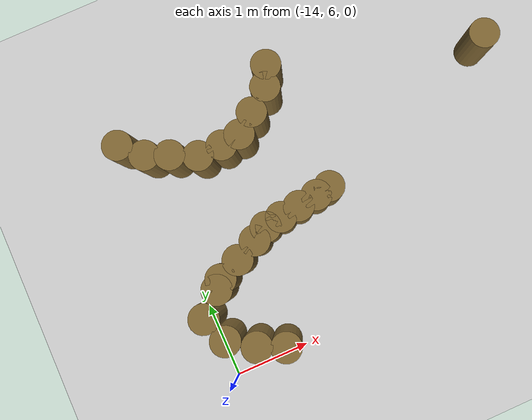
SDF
<sdf version="1.7">
 <world name="default">
  <model name="ground_plane">
   <static>1</static>
   <link name="link">
    <collision name="collision">
     <geometry><plane><normal>0 0 1</normal><size>100 100</size></plane></geometry>
     <surface><friction><ode><mu>100</mu><mu2>50</mu2></ode></friction></surface>
    </collision>
    <visual name="visual">
     <cast_shadows>0</cast_shadows>
     <geometry><plane><normal>0 0 1</normal><size>100 100</size></plane></geometry>
     <material>
      <script><uri>file://media/materials/scripts/gazebo.material</uri><name>Gazebo/Grey</name></script>
     </material>
    </visual>
   </link>
  </model>
  <model name="mini_cylinder_0_clone_0_clone_clone_clone_clone_3_clone_20_clone_54">
   <link name="link">
    <inertial>
     <mass>1</mass>
     <inertia><ixx>0.145833</ixx><ixy>0</ixy><ixz>0</ixz><iyy>0.145833</iyy><iyz>0</iyz><izz>0.125</izz></inertia>
    </inertial>
    <visual name="visual">
     <geometry><cylinder><radius>0.2</radius><length>0.8</length></cylinder></geometry>
     <material>
      <script><name>Gazebo/Grey</name><uri>file://media/materials/scripts/gazebo.material</uri></script>
      <shader type="vertex"><normal_map>__default__</normal_map></shader>
      <ambient>0.5 0.4 0.2 1</ambient>
      <diffuse>0.7 0.7 0.7 1</diffuse>
      <specular>0.01 0.01 0.01 1</specular>
      <emissive>0 0 0 1</emissive>
     </material>
    </visual>
    <collision name="collision">
     <geometry><cylinder><radius>0.2</radius><length>0.8</length></cylinder></geometry>
     <surface>
      <friction>
       <ode><mu>1</mu><mu2>1</mu2><fdir1>0 0 0</fdir1><slip1>0</slip1><slip2>0</slip2></ode>
       <torsional>
        <coefficient>1</coefficient>
        <patch_radius>0</patch_radius>
        <surface_radius>0</surface_radius>
        <use_patch_radius>1</use_patch_radius>
        <ode><slip>0</slip></ode>
       </torsional>
      </friction>
      <bounce><restitution_coefficient>0</restitution_coefficient><threshold>1e+06</threshold></bounce>
      <contact>
       <collide_without_contact>0</collide_without_contact>
       <collide_without_contact_bitmask>1</collide_without_contact_bitmask>
       <collide_bitmask>1</collide_bitmask>
       <ode>
        <soft_cfm>0</soft_cfm>
        <soft_erp>0.2</soft_erp>
        <kp>1e+13</kp>
        <kd>1</kd>
        <max_vel>0.01</max_vel>
        <min_depth>0</min_depth>
       </ode>
       <bullet>
        <split_impulse>1</split_impulse>
        <split_impulse_penetration_threshold>-0.01</split_impulse_penetration_threshold>
        <soft_cfm>0</soft_cfm>
        <soft_erp>0.2</soft_erp>
        <kp>1e+13</kp>
        <kd>1</kd>
       </bullet>
      </contact>
     </surface>
    </collision>
   </link>
   <static>1</static>
   <pose>-13.2033 6.16621 0.4 0 -0 0</pose>
  </model>
  <model name="mini_cylinder_0_clone_0_clone_clone_clone_clone_3_clone_20_clone_55">
   <link name="link">
    <inertial>
     <mass>1</mass>
     <inertia><ixx>0.145833</ixx><ixy>0</ixy><ixz>0</ixz><iyy>0.145833</iyy><iyz>0</iyz><izz>0.125</izz></inertia>
    </inertial>
    <visual name="visual">
     <geometry><cylinder><radius>0.2</radius><length>0.8</length></cylinder></geometry>
     <material>
      <script><name>Gazebo/Grey</name><uri>file://media/materials/scripts/gazebo.material</uri></script>
      <shader type="vertex"><normal_map>__default__</normal_map></shader>
      <ambient>0.5 0.4 0.2 1</ambient>
      <diffuse>0.7 0.7 0.7 1</diffuse>
      <specular>0.01 0.01 0.01 1</specular>
      <emissive>0 0 0 1</emissive>
     </material>
    </visual>
    <collision name="collision">
     <geometry><cylinder><radius>0.2</radius><length>0.8</length></cylinder></geometry>
     <surface>
      <friction>
       <ode><mu>1</mu><mu2>1</mu2><fdir1>0 0 0</fdir1><slip1>0</slip1><slip2>0</slip2></ode>
       <torsional>
        <coefficient>1</coefficient>
        <patch_radius>0</patch_radius>
        <surface_radius>0</surface_radius>
        <use_patch_radius>1</use_patch_radius>
        <ode><slip>0</slip></ode>
       </torsional>
      </friction>
      <bounce><restitution_coefficient>0</restitution_coefficient><threshold>1e+06</threshold></bounce>
      <contact>
       <collide_without_contact>0</collide_without_contact>
       <collide_without_contact_bitmask>1</collide_without_contact_bitmask>
       <collide_bitmask>1</collide_bitmask>
       <ode>
        <soft_cfm>0</soft_cfm>
        <soft_erp>0.2</soft_erp>
        <kp>1e+13</kp>
        <kd>1</kd>
        <max_vel>0.01</max_vel>
        <min_depth>0</min_depth>
       </ode>
       <bullet>
        <split_impulse>1</split_impulse>
        <split_impulse_penetration_threshold>-0.01</split_impulse_penetration_threshold>
        <soft_cfm>0</soft_cfm>
        <soft_erp>0.2</soft_erp>
        <kp>1e+13</kp>
        <kd>1</kd>
       </bullet>
      </contact>
     </surface>
    </collision>
   </link>
   <static>1</static>
   <pose>-13.5352 6.31781 0.4 0 -0 0</pose>
  </model>
  <model name="mini_cylinder_0_clone_0_clone_clone_clone_clone_3_clone_20_clone_56">
   <link name="link">
    <inertial>
     <mass>1</mass>
     <inertia><ixx>0.145833</ixx><ixy>0</ixy><ixz>0</ixz><iyy>0.145833</iyy><iyz>0</iyz><izz>0.125</izz></inertia>
    </inertial>
    <visual name="visual">
     <geometry><cylinder><radius>0.2</radius><length>0.8</length></cylinder></geometry>
     <material>
      <script><name>Gazebo/Grey</name><uri>file://media/materials/scripts/gazebo.material</uri></script>
      <shader type="vertex"><normal_map>__default__</normal_map></shader>
      <ambient>0.5 0.4 0.2 1</ambient>
      <diffuse>0.7 0.7 0.7 1</diffuse>
      <specular>0.01 0.01 0.01 1</specular>
      <emissive>0 0 0 1</emissive>
     </material>
    </visual>
    <collision name="collision">
     <geometry><cylinder><radius>0.2</radius><length>0.8</length></cylinder></geometry>
     <surface>
      <friction>
       <ode><mu>1</mu><mu2>1</mu2><fdir1>0 0 0</fdir1><slip1>0</slip1><slip2>0</slip2></ode>
       <torsional>
        <coefficient>1</coefficient>
        <patch_radius>0</patch_radius>
        <surface_radius>0</surface_radius>
        <use_patch_radius>1</use_patch_radius>
        <ode><slip>0</slip></ode>
       </torsional>
      </friction>
      <bounce><restitution_coefficient>0</restitution_coefficient><threshold>1e+06</threshold></bounce>
      <contact>
       <collide_without_contact>0</collide_without_contact>
       <collide_without_contact_bitmask>1</collide_without_contact_bitmask>
       <collide_bitmask>1</collide_bitmask>
       <ode>
        <soft_cfm>0</soft_cfm>
        <soft_erp>0.2</soft_erp>
        <kp>1e+13</kp>
        <kd>1</kd>
        <max_vel>0.01</max_vel>
        <min_depth>0</min_depth>
       </ode>
       <bullet>
        <split_impulse>1</split_impulse>
        <split_impulse_penetration_threshold>-0.01</split_impulse_penetration_threshold>
        <soft_cfm>0</soft_cfm>
        <soft_erp>0.2</soft_erp>
        <kp>1e+13</kp>
        <kd>1</kd>
       </bullet>
      </contact>
     </surface>
    </collision>
   </link>
   <static>1</static>
   <pose>-13.8634 6.54035 0.4 0 -0 0</pose>
  </model>
  <model name="mini_cylinder_0_clone_0_clone_clone_clone_clone_3_clone_20_clone_57">
   <link name="link">
    <inertial>
     <mass>1</mass>
     <inertia><ixx>0.145833</ixx><ixy>0</ixy><ixz>0</ixz><iyy>0.145833</iyy><iyz>0</iyz><izz>0.125</izz></inertia>
    </inertial>
    <visual name="visual">
     <geometry><cylinder><radius>0.2</radius><length>0.8</length></cylinder></geometry>
     <material>
      <script><name>Gazebo/Grey</name><uri>file://media/materials/scripts/gazebo.material</uri></script>
      <shader type="vertex"><normal_map>__default__</normal_map></shader>
      <ambient>0.5 0.4 0.2 1</ambient>
      <diffuse>0.7 0.7 0.7 1</diffuse>
      <specular>0.01 0.01 0.01 1</specular>
      <emissive>0 0 0 1</emissive>
     </material>
    </visual>
    <collision name="collision">
     <geometry><cylinder><radius>0.2</radius><length>0.8</length></cylinder></geometry>
     <surface>
      <friction>
       <ode><mu>1</mu><mu2>1</mu2><fdir1>0 0 0</fdir1><slip1>0</slip1><slip2>0</slip2></ode>
       <torsional>
        <coefficient>1</coefficient>
        <patch_radius>0</patch_radius>
        <surface_radius>0</surface_radius>
        <use_patch_radius>1</use_patch_radius>
        <ode><slip>0</slip></ode>
       </torsional>
      </friction>
      <bounce><restitution_coefficient>0</restitution_coefficient><threshold>1e+06</threshold></bounce>
      <contact>
       <collide_without_contact>0</collide_without_contact>
       <collide_without_contact_bitmask>1</collide_without_contact_bitmask>
       <collide_bitmask>1</collide_bitmask>
       <ode>
        <soft_cfm>0</soft_cfm>
        <soft_erp>0.2</soft_erp>
        <kp>1e+13</kp>
        <kd>1</kd>
        <max_vel>0.01</max_vel>
        <min_depth>0</min_depth>
       </ode>
       <bullet>
        <split_impulse>1</split_impulse>
        <split_impulse_penetration_threshold>-0.01</split_impulse_penetration_threshold>
        <soft_cfm>0</soft_cfm>
        <soft_erp>0.2</soft_erp>
        <kp>1e+13</kp>
        <kd>1</kd>
       </bullet>
      </contact>
     </surface>
    </collision>
   </link>
   <static>1</static>
   <pose>-14.0001 6.89604 0.4 0 -0 0</pose>
  </model>
  <model name="mini_cylinder_0_clone_0_clone_clone_clone_clone_3_clone_20_clone_58">
   <link name="link">
    <inertial>
     <mass>1</mass>
     <inertia><ixx>0.145833</ixx><ixy>0</ixy><ixz>0</ixz><iyy>0.145833</iyy><iyz>0</iyz><izz>0.125</izz></inertia>
    </inertial>
    <visual name="visual">
     <geometry><cylinder><radius>0.2</radius><length>0.8</length></cylinder></geometry>
     <material>
      <script><name>Gazebo/Grey</name><uri>file://media/materials/scripts/gazebo.material</uri></script>
      <shader type="vertex"><normal_map>__default__</normal_map></shader>
      <ambient>0.5 0.4 0.2 1</ambient>
      <diffuse>0.7 0.7 0.7 1</diffuse>
      <specular>0.01 0.01 0.01 1</specular>
      <emissive>0 0 0 1</emissive>
     </material>
    </visual>
    <collision name="collision">
     <geometry><cylinder><radius>0.2</radius><length>0.8</length></cylinder></geometry>
     <surface>
      <friction>
       <ode><mu>1</mu><mu2>1</mu2><fdir1>0 0 0</fdir1><slip1>0</slip1><slip2>0</slip2></ode>
       <torsional>
        <coefficient>1</coefficient>
        <patch_radius>0</patch_radius>
        <surface_radius>0</surface_radius>
        <use_patch_radius>1</use_patch_radius>
        <ode><slip>0</slip></ode>
       </torsional>
      </friction>
      <bounce><restitution_coefficient>0</restitution_coefficient><threshold>1e+06</threshold></bounce>
      <contact>
       <collide_without_contact>0</collide_without_contact>
       <collide_without_contact_bitmask>1</collide_without_contact_bitmask>
       <collide_bitmask>1</collide_bitmask>
       <ode>
        <soft_cfm>0</soft_cfm>
        <soft_erp>0.2</soft_erp>
        <kp>1e+13</kp>
        <kd>1</kd>
        <max_vel>0.01</max_vel>
        <min_depth>0</min_depth>
       </ode>
       <bullet>
        <split_impulse>1</split_impulse>
        <split_impulse_penetration_threshold>-0.01</split_impulse_penetration_threshold>
        <soft_cfm>0</soft_cfm>
        <soft_erp>0.2</soft_erp>
        <kp>1e+13</kp>
        <kd>1</kd>
       </bullet>
      </contact>
     </surface>
    </collision>
   </link>
   <static>1</static>
   <pose>-13.7124 7.16198 0.4 0 -0 0</pose>
  </model>
  <model name="mini_cylinder_0_clone_0_clone_clone_clone_clone_3_clone_20_clone_59">
   <link name="link">
    <inertial>
     <mass>1</mass>
     <inertia><ixx>0.145833</ixx><ixy>0</ixy><ixz>0</ixz><iyy>0.145833</iyy><iyz>0</iyz><izz>0.125</izz></inertia>
    </inertial>
    <visual name="visual">
     <geometry><cylinder><radius>0.2</radius><length>0.8</length></cylinder></geometry>
     <material>
      <script><name>Gazebo/Grey</name><uri>file://media/materials/scripts/gazebo.material</uri></script>
      <shader type="vertex"><normal_map>__default__</normal_map></shader>
      <ambient>0.5 0.4 0.2 1</ambient>
      <diffuse>0.7 0.7 0.7 1</diffuse>
      <specular>0.01 0.01 0.01 1</specular>
      <emissive>0 0 0 1</emissive>
     </material>
    </visual>
    <collision name="collision">
     <geometry><cylinder><radius>0.2</radius><length>0.8</length></cylinder></geometry>
     <surface>
      <friction>
       <ode><mu>1</mu><mu2>1</mu2><fdir1>0 0 0</fdir1><slip1>0</slip1><slip2>0</slip2></ode>
       <torsional>
        <coefficient>1</coefficient>
        <patch_radius>0</patch_radius>
        <surface_radius>0</surface_radius>
        <use_patch_radius>1</use_patch_radius>
        <ode><slip>0</slip></ode>
       </torsional>
      </friction>
      <bounce><restitution_coefficient>0</restitution_coefficient><threshold>1e+06</threshold></bounce>
      <contact>
       <collide_without_contact>0</collide_without_contact>
       <collide_without_contact_bitmask>1</collide_without_contact_bitmask>
       <collide_bitmask>1</collide_bitmask>
       <ode>
        <soft_cfm>0</soft_cfm>
        <soft_erp>0.2</soft_erp>
        <kp>1e+13</kp>
        <kd>1</kd>
        <max_vel>0.01</max_vel>
        <min_depth>0</min_depth>
       </ode>
       <bullet>
        <split_impulse>1</split_impulse>
        <split_impulse_penetration_threshold>-0.01</split_impulse_penetration_threshold>
        <soft_cfm>0</soft_cfm>
        <soft_erp>0.2</soft_erp>
        <kp>1e+13</kp>
        <kd>1</kd>
       </bullet>
      </contact>
     </surface>
    </collision>
   </link>
   <static>1</static>
   <pose>-13.3251 7.39537 0.4 0 -0 0</pose>
  </model>
  <model name="mini_cylinder_0_clone_0_clone_clone_clone_clone_3_clone_20_clone_60">
   <link name="link">
    <inertial>
     <mass>1</mass>
     <inertia><ixx>0.145833</ixx><ixy>0</ixy><ixz>0</ixz><iyy>0.145833</iyy><iyz>0</iyz><izz>0.125</izz></inertia>
    </inertial>
    <visual name="visual">
     <geometry><cylinder><radius>0.2</radius><length>0.8</length></cylinder></geometry>
     <material>
      <script><name>Gazebo/Grey</name><uri>file://media/materials/scripts/gazebo.material</uri></script>
      <shader type="vertex"><normal_map>__default__</normal_map></shader>
      <ambient>0.5 0.4 0.2 1</ambient>
      <diffuse>0.7 0.7 0.7 1</diffuse>
      <specular>0.01 0.01 0.01 1</specular>
      <emissive>0 0 0 1</emissive>
     </material>
    </visual>
    <collision name="collision">
     <geometry><cylinder><radius>0.2</radius><length>0.8</length></cylinder></geometry>
     <surface>
      <friction>
       <ode><mu>1</mu><mu2>1</mu2><fdir1>0 0 0</fdir1><slip1>0</slip1><slip2>0</slip2></ode>
       <torsional>
        <coefficient>1</coefficient>
        <patch_radius>0</patch_radius>
        <surface_radius>0</surface_radius>
        <use_patch_radius>1</use_patch_radius>
        <ode><slip>0</slip></ode>
       </torsional>
      </friction>
      <bounce><restitution_coefficient>0</restitution_coefficient><threshold>1e+06</threshold></bounce>
      <contact>
       <collide_without_contact>0</collide_without_contact>
       <collide_without_contact_bitmask>1</collide_without_contact_bitmask>
       <collide_bitmask>1</collide_bitmask>
       <ode>
        <soft_cfm>0</soft_cfm>
        <soft_erp>0.2</soft_erp>
        <kp>1e+13</kp>
        <kd>1</kd>
        <max_vel>0.01</max_vel>
        <min_depth>0</min_depth>
       </ode>
       <bullet>
        <split_impulse>1</split_impulse>
        <split_impulse_penetration_threshold>-0.01</split_impulse_penetration_threshold>
        <soft_cfm>0</soft_cfm>
        <soft_erp>0.2</soft_erp>
        <kp>1e+13</kp>
        <kd>1</kd>
       </bullet>
      </contact>
     </surface>
    </collision>
   </link>
   <static>1</static>
   <pose>-13.0347 7.53038 0.4 0 -0 0</pose>
  </model>
  <model name="mini_cylinder_0_clone_0_clone_clone_clone_clone_3_clone_20_clone_61">
   <link name="link">
    <inertial>
     <mass>1</mass>
     <inertia><ixx>0.145833</ixx><ixy>0</ixy><ixz>0</ixz><iyy>0.145833</iyy><iyz>0</iyz><izz>0.125</izz></inertia>
    </inertial>
    <visual name="visual">
     <geometry><cylinder><radius>0.2</radius><length>0.8</length></cylinder></geometry>
     <material>
      <script><name>Gazebo/Grey</name><uri>file://media/materials/scripts/gazebo.material</uri></script>
      <shader type="vertex"><normal_map>__default__</normal_map></shader>
      <ambient>0.5 0.4 0.2 1</ambient>
      <diffuse>0.7 0.7 0.7 1</diffuse>
      <specular>0.01 0.01 0.01 1</specular>
      <emissive>0 0 0 1</emissive>
     </material>
    </visual>
    <collision name="collision">
     <geometry><cylinder><radius>0.2</radius><length>0.8</length></cylinder></geometry>
     <surface>
      <friction>
       <ode><mu>1</mu><mu2>1</mu2><fdir1>0 0 0</fdir1><slip1>0</slip1><slip2>0</slip2></ode>
       <torsional>
        <coefficient>1</coefficient>
        <patch_radius>0</patch_radius>
        <surface_radius>0</surface_radius>
        <use_patch_radius>1</use_patch_radius>
        <ode><slip>0</slip></ode>
       </torsional>
      </friction>
      <bounce><restitution_coefficient>0</restitution_coefficient><threshold>1e+06</threshold></bounce>
      <contact>
       <collide_without_contact>0</collide_without_contact>
       <collide_without_contact_bitmask>1</collide_without_contact_bitmask>
       <collide_bitmask>1</collide_bitmask>
       <ode>
        <soft_cfm>0</soft_cfm>
        <soft_erp>0.2</soft_erp>
        <kp>1e+13</kp>
        <kd>1</kd>
        <max_vel>0.01</max_vel>
        <min_depth>0</min_depth>
       </ode>
       <bullet>
        <split_impulse>1</split_impulse>
        <split_impulse_penetration_threshold>-0.01</split_impulse_penetration_threshold>
        <soft_cfm>0</soft_cfm>
        <soft_erp>0.2</soft_erp>
        <kp>1e+13</kp>
        <kd>1</kd>
       </bullet>
      </contact>
     </surface>
    </collision>
   </link>
   <static>1</static>
   <pose>-12.6146 7.668 0.4 0 -0 0</pose>
  </model>
  <model name="mini_cylinder_0_clone_0_clone_clone_clone_clone_3_clone_20_clone_62">
   <link name="link">
    <inertial>
     <mass>1</mass>
     <inertia><ixx>0.145833</ixx><ixy>0</ixy><ixz>0</ixz><iyy>0.145833</iyy><iyz>0</iyz><izz>0.125</izz></inertia>
    </inertial>
    <visual name="visual">
     <geometry><cylinder><radius>0.2</radius><length>0.8</length></cylinder></geometry>
     <material>
      <script><name>Gazebo/Grey</name><uri>file://media/materials/scripts/gazebo.material</uri></script>
      <shader type="vertex"><normal_map>__default__</normal_map></shader>
      <ambient>0.5 0.4 0.2 1</ambient>
      <diffuse>0.7 0.7 0.7 1</diffuse>
      <specular>0.01 0.01 0.01 1</specular>
      <emissive>0 0 0 1</emissive>
     </material>
    </visual>
    <collision name="collision">
     <geometry><cylinder><radius>0.2</radius><length>0.8</length></cylinder></geometry>
     <surface>
      <friction>
       <ode><mu>1</mu><mu2>1</mu2><fdir1>0 0 0</fdir1><slip1>0</slip1><slip2>0</slip2></ode>
       <torsional>
        <coefficient>1</coefficient>
        <patch_radius>0</patch_radius>
        <surface_radius>0</surface_radius>
        <use_patch_radius>1</use_patch_radius>
        <ode><slip>0</slip></ode>
       </torsional>
      </friction>
      <bounce><restitution_coefficient>0</restitution_coefficient><threshold>1e+06</threshold></bounce>
      <contact>
       <collide_without_contact>0</collide_without_contact>
       <collide_without_contact_bitmask>1</collide_without_contact_bitmask>
       <collide_bitmask>1</collide_bitmask>
       <ode>
        <soft_cfm>0</soft_cfm>
        <soft_erp>0.2</soft_erp>
        <kp>1e+13</kp>
        <kd>1</kd>
        <max_vel>0.01</max_vel>
        <min_depth>0</min_depth>
       </ode>
       <bullet>
        <split_impulse>1</split_impulse>
        <split_impulse_penetration_threshold>-0.01</split_impulse_penetration_threshold>
        <soft_cfm>0</soft_cfm>
        <soft_erp>0.2</soft_erp>
        <kp>1e+13</kp>
        <kd>1</kd>
       </bullet>
      </contact>
     </surface>
    </collision>
   </link>
   <static>1</static>
   <pose>-13.6156 7.26108 0.4 0 -0 0</pose>
  </model>
  <model name="mini_cylinder_0_clone_0_clone_clone_clone_clone_3_clone_20_clone_63">
   <link name="link">
    <inertial>
     <mass>1</mass>
     <inertia><ixx>0.145833</ixx><ixy>0</ixy><ixz>0</ixz><iyy>0.145833</iyy><iyz>0</iyz><izz>0.125</izz></inertia>
    </inertial>
    <visual name="visual">
     <geometry><cylinder><radius>0.2</radius><length>0.8</length></cylinder></geometry>
     <material>
      <script><name>Gazebo/Grey</name><uri>file://media/materials/scripts/gazebo.material</uri></script>
      <shader type="vertex"><normal_map>__default__</normal_map></shader>
      <ambient>0.5 0.4 0.2 1</ambient>
      <diffuse>0.7 0.7 0.7 1</diffuse>
      <specular>0.01 0.01 0.01 1</specular>
      <emissive>0 0 0 1</emissive>
     </material>
    </visual>
    <collision name="collision">
     <geometry><cylinder><radius>0.2</radius><length>0.8</length></cylinder></geometry>
     <surface>
      <friction>
       <ode><mu>1</mu><mu2>1</mu2><fdir1>0 0 0</fdir1><slip1>0</slip1><slip2>0</slip2></ode>
       <torsional>
        <coefficient>1</coefficient>
        <patch_radius>0</patch_radius>
        <surface_radius>0</surface_radius>
        <use_patch_radius>1</use_patch_radius>
        <ode><slip>0</slip></ode>
       </torsional>
      </friction>
      <bounce><restitution_coefficient>0</restitution_coefficient><threshold>1e+06</threshold></bounce>
      <contact>
       <collide_without_contact>0</collide_without_contact>
       <collide_without_contact_bitmask>1</collide_without_contact_bitmask>
       <collide_bitmask>1</collide_bitmask>
       <ode>
        <soft_cfm>0</soft_cfm>
        <soft_erp>0.2</soft_erp>
        <kp>1e+13</kp>
        <kd>1</kd>
        <max_vel>0.01</max_vel>
        <min_depth>0</min_depth>
       </ode>
       <bullet>
        <split_impulse>1</split_impulse>
        <split_impulse_penetration_threshold>-0.01</split_impulse_penetration_threshold>
        <soft_cfm>0</soft_cfm>
        <soft_erp>0.2</soft_erp>
        <kp>1e+13</kp>
        <kd>1</kd>
       </bullet>
      </contact>
     </surface>
    </collision>
   </link>
   <static>1</static>
   <pose>-12.8414 7.63132 0.4 0 -0 0</pose>
  </model>
  <model name="mini_cylinder_0_clone_0_clone_clone_clone_clone_3_clone_20_clone_64">
   <link name="link">
    <inertial>
     <mass>1</mass>
     <inertia><ixx>0.145833</ixx><ixy>0</ixy><ixz>0</ixz><iyy>0.145833</iyy><iyz>0</iyz><izz>0.125</izz></inertia>
    </inertial>
    <visual name="visual">
     <geometry><cylinder><radius>0.2</radius><length>0.8</length></cylinder></geometry>
     <material>
      <script><name>Gazebo/Grey</name><uri>file://media/materials/scripts/gazebo.material</uri></script>
      <shader type="vertex"><normal_map>__default__</normal_map></shader>
      <ambient>0.5 0.4 0.2 1</ambient>
      <diffuse>0.7 0.7 0.7 1</diffuse>
      <specular>0.01 0.01 0.01 1</specular>
      <emissive>0 0 0 1</emissive>
     </material>
    </visual>
    <collision name="collision">
     <geometry><cylinder><radius>0.2</radius><length>0.8</length></cylinder></geometry>
     <surface>
      <friction>
       <ode><mu>1</mu><mu2>1</mu2><fdir1>0 0 0</fdir1><slip1>0</slip1><slip2>0</slip2></ode>
       <torsional>
        <coefficient>1</coefficient>
        <patch_radius>0</patch_radius>
        <surface_radius>0</surface_radius>
        <use_patch_radius>1</use_patch_radius>
        <ode><slip>0</slip></ode>
       </torsional>
      </friction>
      <bounce><restitution_coefficient>0</restitution_coefficient><threshold>1e+06</threshold></bounce>
      <contact>
       <collide_without_contact>0</collide_without_contact>
       <collide_without_contact_bitmask>1</collide_without_contact_bitmask>
       <collide_bitmask>1</collide_bitmask>
       <ode>
        <soft_cfm>0</soft_cfm>
        <soft_erp>0.2</soft_erp>
        <kp>1e+13</kp>
        <kd>1</kd>
        <max_vel>0.01</max_vel>
        <min_depth>0</min_depth>
       </ode>
       <bullet>
        <split_impulse>1</split_impulse>
        <split_impulse_penetration_threshold>-0.01</split_impulse_penetration_threshold>
        <soft_cfm>0</soft_cfm>
        <soft_erp>0.2</soft_erp>
        <kp>1e+13</kp>
        <kd>1</kd>
       </bullet>
      </contact>
     </surface>
    </collision>
   </link>
   <static>1</static>
   <pose>-12.3554 7.70459 0.4 0 -0 0</pose>
  </model>
  <model name="mini_cylinder_0_clone_0_clone_clone_clone_clone_3_clone_20_clone_65">
   <link name="link">
    <inertial>
     <mass>1</mass>
     <inertia><ixx>0.145833</ixx><ixy>0</ixy><ixz>0</ixz><iyy>0.145833</iyy><iyz>0</iyz><izz>0.125</izz></inertia>
    </inertial>
    <visual name="visual">
     <geometry><cylinder><radius>0.2</radius><length>0.8</length></cylinder></geometry>
     <material>
      <script><name>Gazebo/Grey</name><uri>file://media/materials/scripts/gazebo.material</uri></script>
      <shader type="vertex"><normal_map>__default__</normal_map></shader>
      <ambient>0.5 0.4 0.2 1</ambient>
      <diffuse>0.7 0.7 0.7 1</diffuse>
      <specular>0.01 0.01 0.01 1</specular>
      <emissive>0 0 0 1</emissive>
     </material>
    </visual>
    <collision name="collision">
     <geometry><cylinder><radius>0.2</radius><length>0.8</length></cylinder></geometry>
     <surface>
      <friction>
       <ode><mu>1</mu><mu2>1</mu2><fdir1>0 0 0</fdir1><slip1>0</slip1><slip2>0</slip2></ode>
       <torsional>
        <coefficient>1</coefficient>
        <patch_radius>0</patch_radius>
        <surface_radius>0</surface_radius>
        <use_patch_radius>1</use_patch_radius>
        <ode><slip>0</slip></ode>
       </torsional>
      </friction>
      <bounce><restitution_coefficient>0</restitution_coefficient><threshold>1e+06</threshold></bounce>
      <contact>
       <collide_without_contact>0</collide_without_contact>
       <collide_without_contact_bitmask>1</collide_without_contact_bitmask>
       <collide_bitmask>1</collide_bitmask>
       <ode>
        <soft_cfm>0</soft_cfm>
        <soft_erp>0.2</soft_erp>
        <kp>1e+13</kp>
        <kd>1</kd>
        <max_vel>0.01</max_vel>
        <min_depth>0</min_depth>
       </ode>
       <bullet>
        <split_impulse>1</split_impulse>
        <split_impulse_penetration_threshold>-0.01</split_impulse_penetration_threshold>
        <soft_cfm>0</soft_cfm>
        <soft_erp>0.2</soft_erp>
        <kp>1e+13</kp>
        <kd>1</kd>
       </bullet>
      </contact>
     </surface>
    </collision>
   </link>
   <static>1</static>
   <pose>-12.0949 7.74118 0.4 0 -0 0</pose>
  </model>
  <model name="mini_cylinder_0_clone_0_clone_clone_clone_clone_3_clone_20_clone_66">
   <link name="link">
    <inertial>
     <mass>1</mass>
     <inertia><ixx>0.145833</ixx><ixy>0</ixy><ixz>0</ixz><iyy>0.145833</iyy><iyz>0</iyz><izz>0.125</izz></inertia>
    </inertial>
    <visual name="visual">
     <geometry><cylinder><radius>0.2</radius><length>0.8</length></cylinder></geometry>
     <material>
      <script><name>Gazebo/Grey</name><uri>file://media/materials/scripts/gazebo.material</uri></script>
      <shader type="vertex"><normal_map>__default__</normal_map></shader>
      <ambient>0.5 0.4 0.2 1</ambient>
      <diffuse>0.7 0.7 0.7 1</diffuse>
      <specular>0.01 0.01 0.01 1</specular>
      <emissive>0 0 0 1</emissive>
     </material>
    </visual>
    <collision name="collision">
     <geometry><cylinder><radius>0.2</radius><length>0.8</length></cylinder></geometry>
     <surface>
      <friction>
       <ode><mu>1</mu><mu2>1</mu2><fdir1>0 0 0</fdir1><slip1>0</slip1><slip2>0</slip2></ode>
       <torsional>
        <coefficient>1</coefficient>
        <patch_radius>0</patch_radius>
        <surface_radius>0</surface_radius>
        <use_patch_radius>1</use_patch_radius>
        <ode><slip>0</slip></ode>
       </torsional>
      </friction>
      <bounce><restitution_coefficient>0</restitution_coefficient><threshold>1e+06</threshold></bounce>
      <contact>
       <collide_without_contact>0</collide_without_contact>
       <collide_without_contact_bitmask>1</collide_without_contact_bitmask>
       <collide_bitmask>1</collide_bitmask>
       <ode>
        <soft_cfm>0</soft_cfm>
        <soft_erp>0.2</soft_erp>
        <kp>1e+13</kp>
        <kd>1</kd>
        <max_vel>0.01</max_vel>
        <min_depth>0</min_depth>
       </ode>
       <bullet>
        <split_impulse>1</split_impulse>
        <split_impulse_penetration_threshold>-0.01</split_impulse_penetration_threshold>
        <soft_cfm>0</soft_cfm>
        <soft_erp>0.2</soft_erp>
        <kp>1e+13</kp>
        <kd>1</kd>
       </bullet>
      </contact>
     </surface>
    </collision>
   </link>
   <static>1</static>
   <pose>-11.9005 7.77677 0.4 0 -0 0</pose>
  </model>
  <model name="mini_cylinder_0_clone_0_clone_clone_clone_clone_3_clone_20_clone_80">
   <link name="link">
    <inertial>
     <mass>1</mass>
     <inertia><ixx>0.145833</ixx><ixy>0</ixy><ixz>0</ixz><iyy>0.145833</iyy><iyz>0</iyz><izz>0.125</izz></inertia>
    </inertial>
    <visual name="visual">
     <geometry><cylinder><radius>0.2</radius><length>0.8</length></cylinder></geometry>
     <material>
      <script><name>Gazebo/Grey</name><uri>file://media/materials/scripts/gazebo.material</uri></script>
      <shader type="vertex"><normal_map>__default__</normal_map></shader>
      <ambient>0.5 0.4 0.2 1</ambient>
      <diffuse>0.7 0.7 0.7 1</diffuse>
      <specular>0.01 0.01 0.01 1</specular>
      <emissive>0 0 0 1</emissive>
     </material>
    </visual>
    <collision name="collision">
     <geometry><cylinder><radius>0.2</radius><length>0.8</length></cylinder></geometry>
     <surface>
      <friction>
       <ode><mu>1</mu><mu2>1</mu2><fdir1>0 0 0</fdir1><slip1>0</slip1><slip2>0</slip2></ode>
       <torsional>
        <coefficient>1</coefficient>
        <patch_radius>0</patch_radius>
        <surface_radius>0</surface_radius>
        <use_patch_radius>1</use_patch_radius>
        <ode><slip>0</slip></ode>
       </torsional>
      </friction>
      <bounce><restitution_coefficient>0</restitution_coefficient><threshold>1e+06</threshold></bounce>
      <contact>
       <collide_without_contact>0</collide_without_contact>
       <collide_without_contact_bitmask>1</collide_without_contact_bitmask>
       <collide_bitmask>1</collide_bitmask>
       <ode>
        <soft_cfm>0</soft_cfm>
        <soft_erp>0.2</soft_erp>
        <kp>1e+13</kp>
        <kd>1</kd>
        <max_vel>0.01</max_vel>
        <min_depth>0</min_depth>
       </ode>
       <bullet>
        <split_impulse>1</split_impulse>
        <split_impulse_penetration_threshold>-0.01</split_impulse_penetration_threshold>
        <soft_cfm>0</soft_cfm>
        <soft_erp>0.2</soft_erp>
        <kp>1e+13</kp>
        <kd>1</kd>
       </bullet>
      </contact>
     </surface>
    </collision>
   </link>
   <static>1</static>
   <pose>-12.0046 9.539 0.4 0 -0 0</pose>
  </model>
  <model name="mini_cylinder_0_clone_0_clone_clone_clone_clone_3_clone_20_clone_81">
   <link name="link">
    <inertial>
     <mass>1</mass>
     <inertia><ixx>0.145833</ixx><ixy>0</ixy><ixz>0</ixz><iyy>0.145833</iyy><iyz>0</iyz><izz>0.125</izz></inertia>
    </inertial>
    <visual name="visual">
     <geometry><cylinder><radius>0.2</radius><length>0.8</length></cylinder></geometry>
     <material>
      <script><name>Gazebo/Grey</name><uri>file://media/materials/scripts/gazebo.material</uri></script>
      <shader type="vertex"><normal_map>__default__</normal_map></shader>
      <ambient>0.5 0.4 0.2 1</ambient>
      <diffuse>0.7 0.7 0.7 1</diffuse>
      <specular>0.01 0.01 0.01 1</specular>
      <emissive>0 0 0 1</emissive>
     </material>
    </visual>
    <collision name="collision">
     <geometry><cylinder><radius>0.2</radius><length>0.8</length></cylinder></geometry>
     <surface>
      <friction>
       <ode><mu>1</mu><mu2>1</mu2><fdir1>0 0 0</fdir1><slip1>0</slip1><slip2>0</slip2></ode>
       <torsional>
        <coefficient>1</coefficient>
        <patch_radius>0</patch_radius>
        <surface_radius>0</surface_radius>
        <use_patch_radius>1</use_patch_radius>
        <ode><slip>0</slip></ode>
       </torsional>
      </friction>
      <bounce><restitution_coefficient>0</restitution_coefficient><threshold>1e+06</threshold></bounce>
      <contact>
       <collide_without_contact>0</collide_without_contact>
       <collide_without_contact_bitmask>1</collide_without_contact_bitmask>
       <collide_bitmask>1</collide_bitmask>
       <ode>
        <soft_cfm>0</soft_cfm>
        <soft_erp>0.2</soft_erp>
        <kp>1e+13</kp>
        <kd>1</kd>
        <max_vel>0.01</max_vel>
        <min_depth>0</min_depth>
       </ode>
       <bullet>
        <split_impulse>1</split_impulse>
        <split_impulse_penetration_threshold>-0.01</split_impulse_penetration_threshold>
        <soft_cfm>0</soft_cfm>
        <soft_erp>0.2</soft_erp>
        <kp>1e+13</kp>
        <kd>1</kd>
       </bullet>
      </contact>
     </surface>
    </collision>
   </link>
   <static>1</static>
   <pose>-12.1303 9.27589 0.4 0 -0 0</pose>
  </model>
  <model name="mini_cylinder_0_clone_0_clone_clone_clone_clone_3_clone_20_clone_82">
   <link name="link">
    <inertial>
     <mass>1</mass>
     <inertia><ixx>0.145833</ixx><ixy>0</ixy><ixz>0</ixz><iyy>0.145833</iyy><iyz>0</iyz><izz>0.125</izz></inertia>
    </inertial>
    <visual name="visual">
     <geometry><cylinder><radius>0.2</radius><length>0.8</length></cylinder></geometry>
     <material>
      <script><name>Gazebo/Grey</name><uri>file://media/materials/scripts/gazebo.material</uri></script>
      <shader type="vertex"><normal_map>__default__</normal_map></shader>
      <ambient>0.5 0.4 0.2 1</ambient>
      <diffuse>0.7 0.7 0.7 1</diffuse>
      <specular>0.01 0.01 0.01 1</specular>
      <emissive>0 0 0 1</emissive>
     </material>
    </visual>
    <collision name="collision">
     <geometry><cylinder><radius>0.2</radius><length>0.8</length></cylinder></geometry>
     <surface>
      <friction>
       <ode><mu>1</mu><mu2>1</mu2><fdir1>0 0 0</fdir1><slip1>0</slip1><slip2>0</slip2></ode>
       <torsional>
        <coefficient>1</coefficient>
        <patch_radius>0</patch_radius>
        <surface_radius>0</surface_radius>
        <use_patch_radius>1</use_patch_radius>
        <ode><slip>0</slip></ode>
       </torsional>
      </friction>
      <bounce><restitution_coefficient>0</restitution_coefficient><threshold>1e+06</threshold></bounce>
      <contact>
       <collide_without_contact>0</collide_without_contact>
       <collide_without_contact_bitmask>1</collide_without_contact_bitmask>
       <collide_bitmask>1</collide_bitmask>
       <ode>
        <soft_cfm>0</soft_cfm>
        <soft_erp>0.2</soft_erp>
        <kp>1e+13</kp>
        <kd>1</kd>
        <max_vel>0.01</max_vel>
        <min_depth>0</min_depth>
       </ode>
       <bullet>
        <split_impulse>1</split_impulse>
        <split_impulse_penetration_threshold>-0.01</split_impulse_penetration_threshold>
        <soft_cfm>0</soft_cfm>
        <soft_erp>0.2</soft_erp>
        <kp>1e+13</kp>
        <kd>1</kd>
       </bullet>
      </contact>
     </surface>
    </collision>
   </link>
   <static>1</static>
   <pose>-12.4197 9.04399 0.4 0 -0 0</pose>
  </model>
  <model name="mini_cylinder_0_clone_0_clone_clone_clone_clone_3_clone_20_clone_83">
   <link name="link">
    <inertial>
     <mass>1</mass>
     <inertia><ixx>0.145833</ixx><ixy>0</ixy><ixz>0</ixz><iyy>0.145833</iyy><iyz>0</iyz><izz>0.125</izz></inertia>
    </inertial>
    <visual name="visual">
     <geometry><cylinder><radius>0.2</radius><length>0.8</length></cylinder></geometry>
     <material>
      <script><name>Gazebo/Grey</name><uri>file://media/materials/scripts/gazebo.material</uri></script>
      <shader type="vertex"><normal_map>__default__</normal_map></shader>
      <ambient>0.5 0.4 0.2 1</ambient>
      <diffuse>0.7 0.7 0.7 1</diffuse>
      <specular>0.01 0.01 0.01 1</specular>
      <emissive>0 0 0 1</emissive>
     </material>
    </visual>
    <collision name="collision">
     <geometry><cylinder><radius>0.2</radius><length>0.8</length></cylinder></geometry>
     <surface>
      <friction>
       <ode><mu>1</mu><mu2>1</mu2><fdir1>0 0 0</fdir1><slip1>0</slip1><slip2>0</slip2></ode>
       <torsional>
        <coefficient>1</coefficient>
        <patch_radius>0</patch_radius>
        <surface_radius>0</surface_radius>
        <use_patch_radius>1</use_patch_radius>
        <ode><slip>0</slip></ode>
       </torsional>
      </friction>
      <bounce><restitution_coefficient>0</restitution_coefficient><threshold>1e+06</threshold></bounce>
      <contact>
       <collide_without_contact>0</collide_without_contact>
       <collide_without_contact_bitmask>1</collide_without_contact_bitmask>
       <collide_bitmask>1</collide_bitmask>
       <ode>
        <soft_cfm>0</soft_cfm>
        <soft_erp>0.2</soft_erp>
        <kp>1e+13</kp>
        <kd>1</kd>
        <max_vel>0.01</max_vel>
        <min_depth>0</min_depth>
       </ode>
       <bullet>
        <split_impulse>1</split_impulse>
        <split_impulse_penetration_threshold>-0.01</split_impulse_penetration_threshold>
        <soft_cfm>0</soft_cfm>
        <soft_erp>0.2</soft_erp>
        <kp>1e+13</kp>
        <kd>1</kd>
       </bullet>
      </contact>
     </surface>
    </collision>
   </link>
   <static>1</static>
   <pose>-12.6767 8.84445 0.4 0 -0 0</pose>
  </model>
  <model name="mini_cylinder_0_clone_0_clone_clone_clone_clone_3_clone_20_clone_84">
   <link name="link">
    <inertial>
     <mass>1</mass>
     <inertia><ixx>0.145833</ixx><ixy>0</ixy><ixz>0</ixz><iyy>0.145833</iyy><iyz>0</iyz><izz>0.125</izz></inertia>
    </inertial>
    <visual name="visual">
     <geometry><cylinder><radius>0.2</radius><length>0.8</length></cylinder></geometry>
     <material>
      <script><name>Gazebo/Grey</name><uri>file://media/materials/scripts/gazebo.material</uri></script>
      <shader type="vertex"><normal_map>__default__</normal_map></shader>
      <ambient>0.5 0.4 0.2 1</ambient>
      <diffuse>0.7 0.7 0.7 1</diffuse>
      <specular>0.01 0.01 0.01 1</specular>
      <emissive>0 0 0 1</emissive>
     </material>
    </visual>
    <collision name="collision">
     <geometry><cylinder><radius>0.2</radius><length>0.8</length></cylinder></geometry>
     <surface>
      <friction>
       <ode><mu>1</mu><mu2>1</mu2><fdir1>0 0 0</fdir1><slip1>0</slip1><slip2>0</slip2></ode>
       <torsional>
        <coefficient>1</coefficient>
        <patch_radius>0</patch_radius>
        <surface_radius>0</surface_radius>
        <use_patch_radius>1</use_patch_radius>
        <ode><slip>0</slip></ode>
       </torsional>
      </friction>
      <bounce><restitution_coefficient>0</restitution_coefficient><threshold>1e+06</threshold></bounce>
      <contact>
       <collide_without_contact>0</collide_without_contact>
       <collide_without_contact_bitmask>1</collide_without_contact_bitmask>
       <collide_bitmask>1</collide_bitmask>
       <ode>
        <soft_cfm>0</soft_cfm>
        <soft_erp>0.2</soft_erp>
        <kp>1e+13</kp>
        <kd>1</kd>
        <max_vel>0.01</max_vel>
        <min_depth>0</min_depth>
       </ode>
       <bullet>
        <split_impulse>1</split_impulse>
        <split_impulse_penetration_threshold>-0.01</split_impulse_penetration_threshold>
        <soft_cfm>0</soft_cfm>
        <soft_erp>0.2</soft_erp>
        <kp>1e+13</kp>
        <kd>1</kd>
       </bullet>
      </contact>
     </surface>
    </collision>
   </link>
   <static>1</static>
   <pose>-12.9368 8.80782 0.4 0 -0 0</pose>
  </model>
  <model name="mini_cylinder_0_clone_0_clone_clone_clone_clone_3_clone_20_clone_85">
   <link name="link">
    <inertial>
     <mass>1</mass>
     <inertia><ixx>0.145833</ixx><ixy>0</ixy><ixz>0</ixz><iyy>0.145833</iyy><iyz>0</iyz><izz>0.125</izz></inertia>
    </inertial>
    <visual name="visual">
     <geometry><cylinder><radius>0.2</radius><length>0.8</length></cylinder></geometry>
     <material>
      <script><name>Gazebo/Grey</name><uri>file://media/materials/scripts/gazebo.material</uri></script>
      <shader type="vertex"><normal_map>__default__</normal_map></shader>
      <ambient>0.5 0.4 0.2 1</ambient>
      <diffuse>0.7 0.7 0.7 1</diffuse>
      <specular>0.01 0.01 0.01 1</specular>
      <emissive>0 0 0 1</emissive>
     </material>
    </visual>
    <collision name="collision">
     <geometry><cylinder><radius>0.2</radius><length>0.8</length></cylinder></geometry>
     <surface>
      <friction>
       <ode><mu>1</mu><mu2>1</mu2><fdir1>0 0 0</fdir1><slip1>0</slip1><slip2>0</slip2></ode>
       <torsional>
        <coefficient>1</coefficient>
        <patch_radius>0</patch_radius>
        <surface_radius>0</surface_radius>
        <use_patch_radius>1</use_patch_radius>
        <ode><slip>0</slip></ode>
       </torsional>
      </friction>
      <bounce><restitution_coefficient>0</restitution_coefficient><threshold>1e+06</threshold></bounce>
      <contact>
       <collide_without_contact>0</collide_without_contact>
       <collide_without_contact_bitmask>1</collide_without_contact_bitmask>
       <collide_bitmask>1</collide_bitmask>
       <ode>
        <soft_cfm>0</soft_cfm>
        <soft_erp>0.2</soft_erp>
        <kp>1e+13</kp>
        <kd>1</kd>
        <max_vel>0.01</max_vel>
        <min_depth>0</min_depth>
       </ode>
       <bullet>
        <split_impulse>1</split_impulse>
        <split_impulse_penetration_threshold>-0.01</split_impulse_penetration_threshold>
        <soft_cfm>0</soft_cfm>
        <soft_erp>0.2</soft_erp>
        <kp>1e+13</kp>
        <kd>1</kd>
       </bullet>
      </contact>
     </surface>
    </collision>
   </link>
   <static>1</static>
   <pose>-13.261 8.80201 0.4 0 -0 0</pose>
  </model>
  <model name="mini_cylinder_0_clone_0_clone_clone_clone_clone_3_clone_20_clone_86">
   <link name="link">
    <inertial>
     <mass>1</mass>
     <inertia><ixx>0.145833</ixx><ixy>0</ixy><ixz>0</ixz><iyy>0.145833</iyy><iyz>0</iyz><izz>0.125</izz></inertia>
    </inertial>
    <visual name="visual">
     <geometry><cylinder><radius>0.2</radius><length>0.8</length></cylinder></geometry>
     <material>
      <script><name>Gazebo/Grey</name><uri>file://media/materials/scripts/gazebo.material</uri></script>
      <shader type="vertex"><normal_map>__default__</normal_map></shader>
      <ambient>0.5 0.4 0.2 1</ambient>
      <diffuse>0.7 0.7 0.7 1</diffuse>
      <specular>0.01 0.01 0.01 1</specular>
      <emissive>0 0 0 1</emissive>
     </material>
    </visual>
    <collision name="collision">
     <geometry><cylinder><radius>0.2</radius><length>0.8</length></cylinder></geometry>
     <surface>
      <friction>
       <ode><mu>1</mu><mu2>1</mu2><fdir1>0 0 0</fdir1><slip1>0</slip1><slip2>0</slip2></ode>
       <torsional>
        <coefficient>1</coefficient>
        <patch_radius>0</patch_radius>
        <surface_radius>0</surface_radius>
        <use_patch_radius>1</use_patch_radius>
        <ode><slip>0</slip></ode>
       </torsional>
      </friction>
      <bounce><restitution_coefficient>0</restitution_coefficient><threshold>1e+06</threshold></bounce>
      <contact>
       <collide_without_contact>0</collide_without_contact>
       <collide_without_contact_bitmask>1</collide_without_contact_bitmask>
       <collide_bitmask>1</collide_bitmask>
       <ode>
        <soft_cfm>0</soft_cfm>
        <soft_erp>0.2</soft_erp>
        <kp>1e+13</kp>
        <kd>1</kd>
        <max_vel>0.01</max_vel>
        <min_depth>0</min_depth>
       </ode>
       <bullet>
        <split_impulse>1</split_impulse>
        <split_impulse_penetration_threshold>-0.01</split_impulse_penetration_threshold>
        <soft_cfm>0</soft_cfm>
        <soft_erp>0.2</soft_erp>
        <kp>1e+13</kp>
        <kd>1</kd>
       </bullet>
      </contact>
     </surface>
    </collision>
   </link>
   <static>1</static>
   <pose>-13.5889 8.95957 0.4 0 -0 0</pose>
  </model>
  <model name="mini_cylinder_0_clone_0_clone_clone_clone_clone_3_clone_20_clone_87">
   <link name="link">
    <inertial>
     <mass>1</mass>
     <inertia><ixx>0.145833</ixx><ixy>0</ixy><ixz>0</ixz><iyy>0.145833</iyy><iyz>0</iyz><izz>0.125</izz></inertia>
    </inertial>
    <visual name="visual">
     <geometry><cylinder><radius>0.2</radius><length>0.8</length></cylinder></geometry>
     <material>
      <script><name>Gazebo/Grey</name><uri>file://media/materials/scripts/gazebo.material</uri></script>
      <shader type="vertex"><normal_map>__default__</normal_map></shader>
      <ambient>0.5 0.4 0.2 1</ambient>
      <diffuse>0.7 0.7 0.7 1</diffuse>
      <specular>0.01 0.01 0.01 1</specular>
      <emissive>0 0 0 1</emissive>
     </material>
    </visual>
    <collision name="collision">
     <geometry><cylinder><radius>0.2</radius><length>0.8</length></cylinder></geometry>
     <surface>
      <friction>
       <ode><mu>1</mu><mu2>1</mu2><fdir1>0 0 0</fdir1><slip1>0</slip1><slip2>0</slip2></ode>
       <torsional>
        <coefficient>1</coefficient>
        <patch_radius>0</patch_radius>
        <surface_radius>0</surface_radius>
        <use_patch_radius>1</use_patch_radius>
        <ode><slip>0</slip></ode>
       </torsional>
      </friction>
      <bounce><restitution_coefficient>0</restitution_coefficient><threshold>1e+06</threshold></bounce>
      <contact>
       <collide_without_contact>0</collide_without_contact>
       <collide_without_contact_bitmask>1</collide_without_contact_bitmask>
       <collide_bitmask>1</collide_bitmask>
       <ode>
        <soft_cfm>0</soft_cfm>
        <soft_erp>0.2</soft_erp>
        <kp>1e+13</kp>
        <kd>1</kd>
        <max_vel>0.01</max_vel>
        <min_depth>0</min_depth>
       </ode>
       <bullet>
        <split_impulse>1</split_impulse>
        <split_impulse_penetration_threshold>-0.01</split_impulse_penetration_threshold>
        <soft_cfm>0</soft_cfm>
        <soft_erp>0.2</soft_erp>
        <kp>1e+13</kp>
        <kd>1</kd>
       </bullet>
      </contact>
     </surface>
    </collision>
   </link>
   <static>1</static>
   <pose>-13.8834 9.08479 0.4 0 -0 0</pose>
  </model>
  <model name="mini_cylinder_0_clone_0_clone_clone_clone_clone_3_clone_20_clone_88">
   <link name="link">
    <inertial>
     <mass>1</mass>
     <inertia><ixx>0.145833</ixx><ixy>0</ixy><ixz>0</ixz><iyy>0.145833</iyy><iyz>0</iyz><izz>0.125</izz></inertia>
    </inertial>
    <visual name="visual">
     <geometry><cylinder><radius>0.2</radius><length>0.8</length></cylinder></geometry>
     <material>
      <script><name>Gazebo/Grey</name><uri>file://media/materials/scripts/gazebo.material</uri></script>
      <shader type="vertex"><normal_map>__default__</normal_map></shader>
      <ambient>0.5 0.4 0.2 1</ambient>
      <diffuse>0.7 0.7 0.7 1</diffuse>
      <specular>0.01 0.01 0.01 1</specular>
      <emissive>0 0 0 1</emissive>
     </material>
    </visual>
    <collision name="collision">
     <geometry><cylinder><radius>0.2</radius><length>0.8</length></cylinder></geometry>
     <surface>
      <friction>
       <ode><mu>1</mu><mu2>1</mu2><fdir1>0 0 0</fdir1><slip1>0</slip1><slip2>0</slip2></ode>
       <torsional>
        <coefficient>1</coefficient>
        <patch_radius>0</patch_radius>
        <surface_radius>0</surface_radius>
        <use_patch_radius>1</use_patch_radius>
        <ode><slip>0</slip></ode>
       </torsional>
      </friction>
      <bounce><restitution_coefficient>0</restitution_coefficient><threshold>1e+06</threshold></bounce>
      <contact>
       <collide_without_contact>0</collide_without_contact>
       <collide_without_contact_bitmask>1</collide_without_contact_bitmask>
       <collide_bitmask>1</collide_bitmask>
       <ode>
        <soft_cfm>0</soft_cfm>
        <soft_erp>0.2</soft_erp>
        <kp>1e+13</kp>
        <kd>1</kd>
        <max_vel>0.01</max_vel>
        <min_depth>0</min_depth>
       </ode>
       <bullet>
        <split_impulse>1</split_impulse>
        <split_impulse_penetration_threshold>-0.01</split_impulse_penetration_threshold>
        <soft_cfm>0</soft_cfm>
        <soft_erp>0.2</soft_erp>
        <kp>1e+13</kp>
        <kd>1</kd>
       </bullet>
      </contact>
     </surface>
    </collision>
   </link>
   <static>1</static>
   <pose>-14.148 9.34129 0.4 0 -0 0</pose>
  </model>
  <model name="mini_cylinder_0_clone_0_clone_clone_clone_clone_3_clone_20_clone_101">
   <link name="link">
    <inertial>
     <mass>1</mass>
     <inertia><ixx>0.145833</ixx><ixy>0</ixy><ixz>0</ixz><iyy>0.145833</iyy><iyz>0</iyz><izz>0.125</izz></inertia>
    </inertial>
    <visual name="visual">
     <geometry><cylinder><radius>0.2</radius><length>0.8</length></cylinder></geometry>
     <material>
      <script><name>Gazebo/Grey</name><uri>file://media/materials/scripts/gazebo.material</uri></script>
      <shader type="vertex"><normal_map>__default__</normal_map></shader>
      <ambient>0.5 0.4 0.2 1</ambient>
      <diffuse>0.7 0.7 0.7 1</diffuse>
      <specular>0.01 0.01 0.01 1</specular>
      <emissive>0 0 0 1</emissive>
     </material>
    </visual>
    <collision name="collision">
     <geometry><cylinder><radius>0.2</radius><length>0.8</length></cylinder></geometry>
     <surface>
      <friction>
       <ode><mu>1</mu><mu2>1</mu2><fdir1>0 0 0</fdir1><slip1>0</slip1><slip2>0</slip2></ode>
       <torsional>
        <coefficient>1</coefficient>
        <patch_radius>0</patch_radius>
        <surface_radius>0</surface_radius>
        <use_patch_radius>1</use_patch_radius>
        <ode><slip>0</slip></ode>
       </torsional>
      </friction>
      <bounce><restitution_coefficient>0</restitution_coefficient><threshold>1e+06</threshold></bounce>
      <contact>
       <collide_without_contact>0</collide_without_contact>
       <collide_without_contact_bitmask>1</collide_without_contact_bitmask>
       <collide_bitmask>1</collide_bitmask>
       <ode>
        <soft_cfm>0</soft_cfm>
        <soft_erp>0.2</soft_erp>
        <kp>1e+13</kp>
        <kd>1</kd>
        <max_vel>0.01</max_vel>
        <min_depth>0</min_depth>
       </ode>
       <bullet>
        <split_impulse>1</split_impulse>
        <split_impulse_penetration_threshold>-0.01</split_impulse_penetration_threshold>
        <soft_cfm>0</soft_cfm>
        <soft_erp>0.2</soft_erp>
        <kp>1e+13</kp>
        <kd>1</kd>
       </bullet>
      </contact>
     </surface>
    </collision>
   </link>
   <static>1</static>
   <pose>-9.26473 8.77411 0.4 0 -0 0</pose>
  </model>
 </world>
</sdf>
